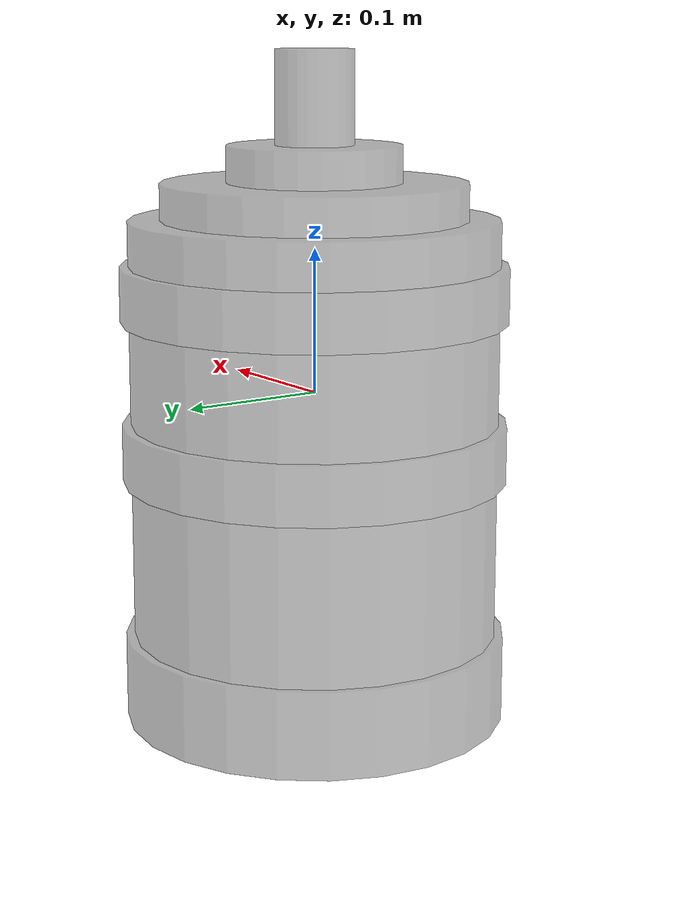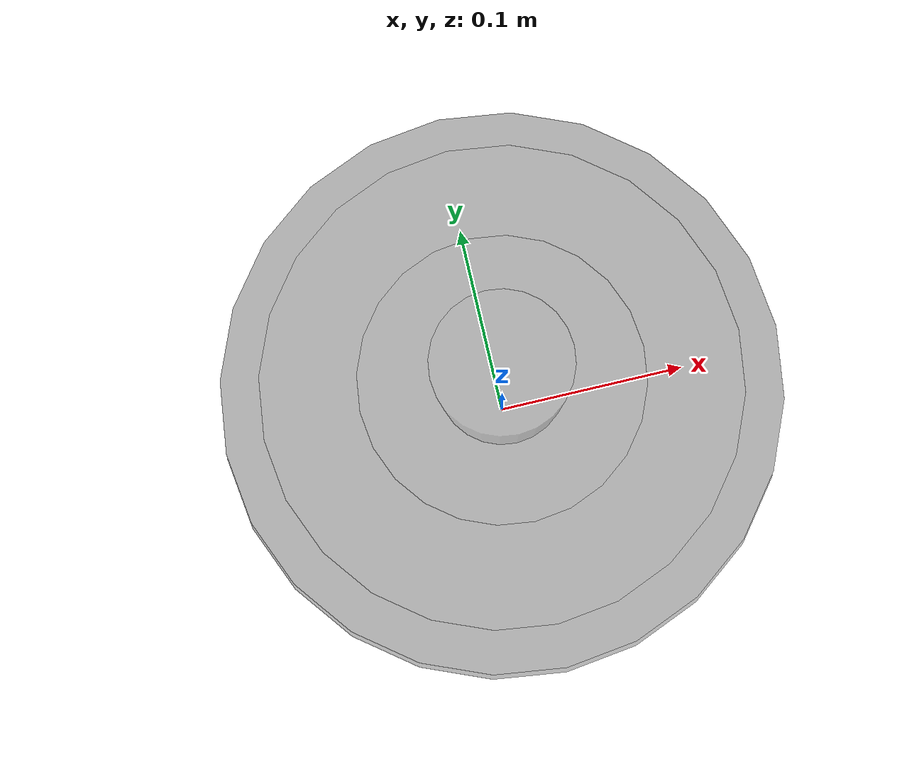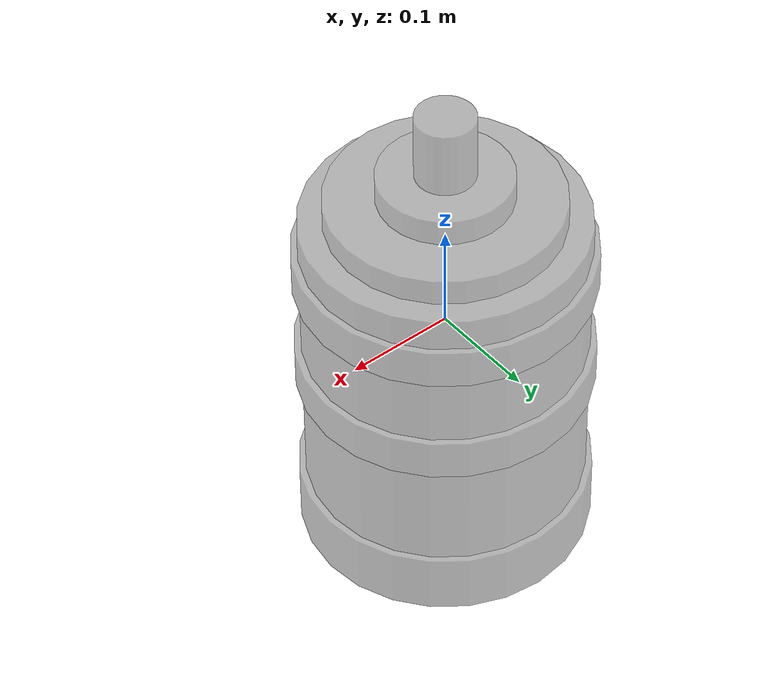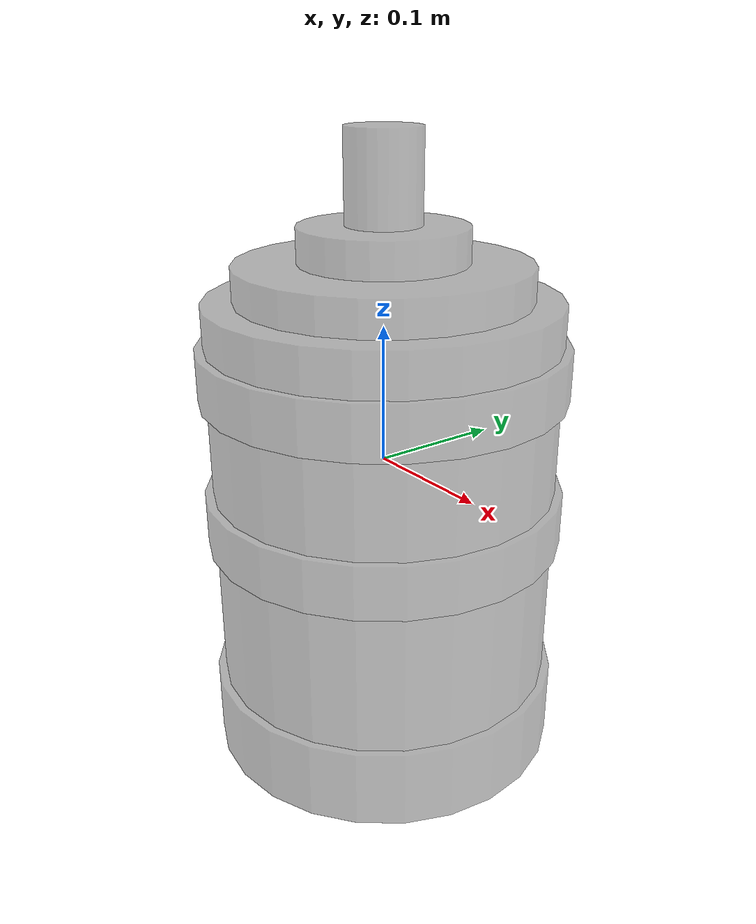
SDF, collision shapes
<?xml version="1.0"?>
<sdf version="1.7">
  <model name="jug_5_gallon">
    <!-- This is a model of an empty 5 gallon water jug. -->
    <!-- The moment of inertia is for a solid cylinder  -->
    <!-- with uniform density. -->
    <link name="jug">
      <inertial>
        <mass>0.8</mass>
        <inertia>
          <ixx>0.00848008333333333</ixx>
          <ixy>0</ixy>
          <ixz>0</ixz>
          <iyy>0.012947533333333332</iyy>
          <iyz>0</iyz>
          <izz>0.01394175</izz>
        </inertia>
      </inertial>
      <visual name="jug_visual">
        <geometry>
          <mesh>
            <scale>1 1 1</scale>
            <uri>jug_water_5_gallon.obj</uri>
          </mesh>
        </geometry>
        <material>
          <diffuse>0.4 0.4 0.4 0.5</diffuse>
        </material>
      </visual>

      <visual name="jug_contact_visual">
        <pose>0 0 -0.2 0 0 0</pose>
        <geometry>
          <cylinder>
            <radius>0.133</radius>
            <length>0.06</length>
          </cylinder>
        </geometry>
        <material>
          <diffuse>0.4 0.6 0.8 0.9</diffuse>
        </material>
      </visual>
      <collision name="jug_collision">
        <pose>0 0 -0.2 0 0 0</pose>
        <geometry>
          <cylinder>
            <radius>0.133</radius>
            <length>0.06</length>
          </cylinder>
        </geometry>
        <drake:proximity_properties>
          <drake:rigid_hydroelastic/>
          <drake:hunt_crossley_dissipation>1.25</drake:hunt_crossley_dissipation>
          <drake:mesh_resolution_hint>0.01</drake:mesh_resolution_hint>
          <drake:mu_dynamic>0.5</drake:mu_dynamic>
          <drake:mu_static>0.5</drake:mu_static>
        </drake:proximity_properties>
      </collision>

      <visual name="jug_contact_visual_2">
        <pose>0 0 -0.115 0 0 0</pose>
        <geometry>
          <cylinder>
            <radius>0.127</radius>
            <length>0.12</length>
          </cylinder>
        </geometry>
        <material>
          <diffuse>0.4 0.6 0.8 0.9</diffuse>
        </material>
      </visual>
      <collision name="jug_collision_2">
        <pose>0 0 -0.115 0 0 0</pose>
        <geometry>
          <cylinder>
            <radius>0.127</radius>
            <length>0.12</length>
          </cylinder>
        </geometry>
        <drake:proximity_properties>
          <drake:rigid_hydroelastic/>
          <drake:hunt_crossley_dissipation>1.25</drake:hunt_crossley_dissipation>
          <drake:mesh_resolution_hint>0.01</drake:mesh_resolution_hint>
          <drake:mu_dynamic>0.5</drake:mu_dynamic>
          <drake:mu_static>0.5</drake:mu_static>
        </drake:proximity_properties>
      </collision>

      <visual name="jug_contact_visual_3">
        <pose>0 0 -0.04 0 0 0</pose>
        <geometry>
          <cylinder>
            <radius>0.133</radius>
            <length>0.04</length>
          </cylinder>
        </geometry>
        <material>
          <diffuse>0.4 0.6 0.8 0.9</diffuse>
        </material>
      </visual>
      <collision name="jug_collision_3">
        <pose>0 0 -0.04 0 0 0</pose>
        <geometry>
          <cylinder>
            <radius>0.133</radius>
            <length>0.04</length>
          </cylinder>
        </geometry>
        <drake:proximity_properties>
          <drake:rigid_hydroelastic/>
          <drake:hunt_crossley_dissipation>1.25</drake:hunt_crossley_dissipation>
          <drake:mesh_resolution_hint>0.01</drake:mesh_resolution_hint>
          <drake:mu_dynamic>0.5</drake:mu_dynamic>
          <drake:mu_static>0.5</drake:mu_static>
        </drake:proximity_properties>
      </collision>

      <visual name="jug_contact_visual_5">
        <pose>0 0 0.03 0 0 0</pose>
        <geometry>
          <cylinder>
            <radius>0.127</radius>
            <length>0.1</length>
          </cylinder>
        </geometry>
        <material>
          <diffuse>0.4 0.6 0.8 0.9</diffuse>
        </material>
      </visual>
      <collision name="jug_collision_5">
        <pose>0 0 0.03 0 0 0</pose>
        <geometry>
          <cylinder>
            <radius>0.127</radius>
            <length>0.1</length>
          </cylinder>
        </geometry>
        <drake:proximity_properties>
          <drake:rigid_hydroelastic/>
          <drake:hunt_crossley_dissipation>1.25</drake:hunt_crossley_dissipation>
          <drake:mesh_resolution_hint>0.01</drake:mesh_resolution_hint>
          <drake:mu_dynamic>0.5</drake:mu_dynamic>
          <drake:mu_static>0.5</drake:mu_static>
        </drake:proximity_properties>
      </collision>

      <visual name="jug_contact_visual_6">
        <pose>0 0 0.07 0 0 0</pose>
        <geometry>
          <cylinder>
            <radius>0.133</radius>
            <length>0.038</length>
          </cylinder>
        </geometry>
        <material>
          <diffuse>0.4 0.6 0.8 0.9</diffuse>
        </material>
      </visual>
      <collision name="jug_collision_6">
        <pose>0 0 0.07 0 0 0</pose>
        <geometry>
          <cylinder>
            <radius>0.133</radius>
            <length>0.038</length>
          </cylinder>
        </geometry>
        <drake:proximity_properties>
          <drake:rigid_hydroelastic/>
          <drake:hunt_crossley_dissipation>1.25</drake:hunt_crossley_dissipation>
          <drake:mesh_resolution_hint>0.01</drake:mesh_resolution_hint>
          <drake:mu_dynamic>0.5</drake:mu_dynamic>
          <drake:mu_static>0.5</drake:mu_static>
        </drake:proximity_properties>
      </collision>

      <visual name="jug_contact_visual_7">
        <pose>0 0 0.095 0 0 0</pose>
        <geometry>
          <cylinder>
            <radius>0.127</radius>
            <length>0.05</length>
          </cylinder>
        </geometry>
        <material>
          <diffuse>0.4 0.6 0.8 0.9</diffuse>
        </material>
      </visual>
      <collision name="jug_collision_7">
        <pose>0 0 0.095 0 0 0</pose>
        <geometry>
          <cylinder>
            <radius>0.127</radius>
            <length>0.05</length>
          </cylinder>
        </geometry>
        <drake:proximity_properties>
          <drake:rigid_hydroelastic/>
          <drake:hunt_crossley_dissipation>1.25</drake:hunt_crossley_dissipation>
          <drake:mesh_resolution_hint>0.01</drake:mesh_resolution_hint>
          <drake:mu_dynamic>0.5</drake:mu_dynamic>
          <drake:mu_static>0.5</drake:mu_static>
        </drake:proximity_properties>
      </collision>

      <visual name="jug_contact_visual_8">
        <pose>0 0 0.115 0 0 0</pose>
        <geometry>
          <cylinder>
            <radius>0.105</radius>
            <length>0.06</length>
          </cylinder>
        </geometry>
        <material>
          <diffuse>0.4 0.6 0.8 0.9</diffuse>
        </material>
      </visual>
      <collision name="jug_collision_8">
        <pose>0 0 0.115 0 0 0</pose>
        <geometry>
          <cylinder>
            <radius>0.105</radius>
            <length>0.06</length>
          </cylinder>
        </geometry>
        <drake:proximity_properties>
          <drake:rigid_hydroelastic/>
          <drake:hunt_crossley_dissipation>1.25</drake:hunt_crossley_dissipation>
          <drake:mesh_resolution_hint>0.01</drake:mesh_resolution_hint>
          <drake:mu_dynamic>0.5</drake:mu_dynamic>
          <drake:mu_static>0.5</drake:mu_static>
        </drake:proximity_properties>
      </collision>

      <visual name="jug_contact_visual_9">
        <pose>0 0 0.145 0 0 0</pose>
        <geometry>
          <cylinder>
            <radius>0.06</radius>
            <length>0.05</length>
          </cylinder>
        </geometry>
        <material>
          <diffuse>0.4 0.6 0.8 0.9</diffuse>
        </material>
      </visual>
      <collision name="jug_collision_9">
        <pose>0 0 0.145 0 0 0</pose>
        <geometry>
          <cylinder>
            <radius>0.06</radius>
            <length>0.05</length>
          </cylinder>
        </geometry>
        <drake:proximity_properties>
          <drake:rigid_hydroelastic/>
          <drake:hunt_crossley_dissipation>1.25</drake:hunt_crossley_dissipation>
          <drake:mesh_resolution_hint>0.01</drake:mesh_resolution_hint>
          <drake:mu_dynamic>0.5</drake:mu_dynamic>
          <drake:mu_static>0.5</drake:mu_static>
        </drake:proximity_properties>
      </collision>

      <visual name="jug_top_contact_visual">
        <pose>0 0 0.201 0 0 0</pose>
        <geometry>
          <cylinder>
            <radius>0.027</radius>
            <length>0.065</length>
          </cylinder>
        </geometry>
        <material>
          <diffuse>0.4 0.6 0.8 0.9</diffuse>
        </material>
      </visual>
      <collision name="jug_top_collision">
        <pose>0 0 0.201 0 0 0</pose>
        <geometry>
          <cylinder>
            <radius>0.027</radius>
            <length>0.065</length>
          </cylinder>
        </geometry>
        <drake:proximity_properties>
          <drake:rigid_hydroelastic/>
          <drake:hunt_crossley_dissipation>1.25</drake:hunt_crossley_dissipation>
          <drake:mesh_resolution_hint>0.01</drake:mesh_resolution_hint>
          <drake:mu_dynamic>0.5</drake:mu_dynamic>
          <drake:mu_static>0.5</drake:mu_static>
        </drake:proximity_properties>
      </collision>
    </link>
  </model>
</sdf>
